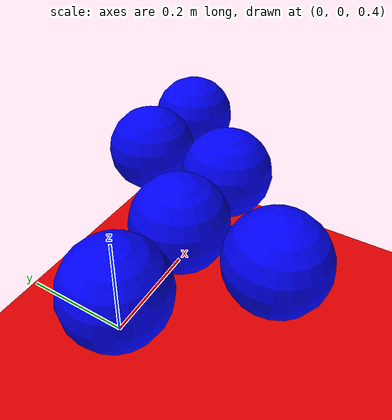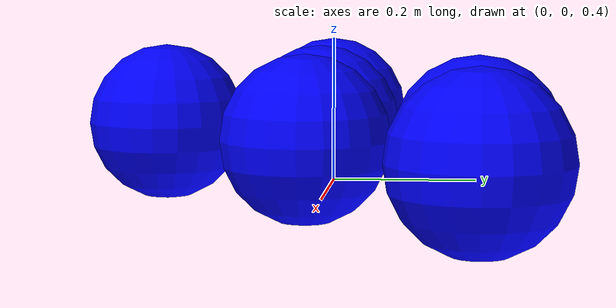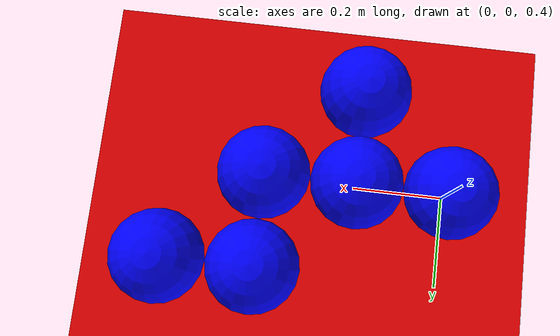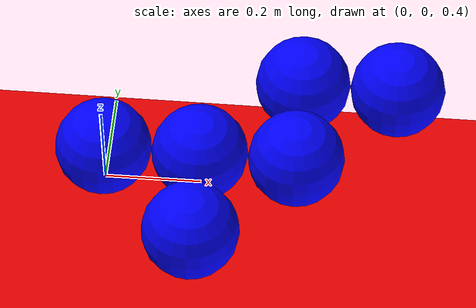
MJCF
<?xml version="1.0" ?>
<mujoco>
	<option gravity="0 0 -9.81"/>
	<worldbody>
		<light diffuse=".5 .5 .5" pos="0 0 3" dir="0 0 -1"/>
		<geom type="plane" size="10 10 0.1" rgba=".9 0 0 1"/>
		<body pos="0 0 0.5">
			<geom size="0.1" rgba="0 0 1 1"/>
			<joint type="free"/>
			<site name="site1" size="0.1" rgba="1 0 0 1"/>
			<body pos="0.1 0 0">
				<joint name="onejoint" type="ball" limited="true" range="0 60"/>
				<geom size="0.1" pos="0.1 0 0" rgba="0 0 1 1"/>
				<site name="site2" pos="0.1 0 0" size="0.1" rgba="1 0 0 1"/>
				<body pos="0.2 0 0">
					<joint name="threejoint" type="ball" limited="true" range="0 60"/>
					<geom size="0.1" rgba="0 0 1 1" pos="0.1 0 0"/>
					<site name="site3" pos="0.1 0 0" size="0.1" rgba="1 0 0 1"/>
					<body pos="0.1 0.1 0">
						<joint name="fourjoint" type="ball" limited="true" range="0 60"/>
						<geom size="0.1" rgba="0 0 1 1" pos="0 0.1 0"/>
						<site name="site4" pos="0 0.1 0" size="0.1" rgba="1 0 0 1"/>
						<body pos="0.1 0.1 0">
							<joint name="fivejoint" type="ball" limited="true" range="0 60"/>
							<geom size="0.1" rgba="0 0 1 1" pos="0.1 0 0"/>
							<site name="site5" size="0.1" pos="0.1 0 0" rgba="1 0 0 1"/>
						</body>
					</body>
				</body>
				<body pos="0.1 -0.1 0">
					<joint name="6oint" type="ball" limited="true" range="0 60"/>
					<geom size="0.1" rgba="0 0 1 1" pos="0 -0.1 0"/>
					<site name="site6" pos="0 -0.1 0" size="0.1" rgba="1 0 0 1"/>
				</body>
			</body>
		</body>
	</worldbody>
	<actuator>
		<motor name="motor1" joint="onejoint" gear="1"/>
		<motor name="motor3" joint="threejoint" gear="1"/>
		<motor name="motor4" joint="fourjoint" gear="1"/>
		<motor name="motor5" joint="fivejoint" gear="1"/>
	</actuator>
	<sensor>
		<touch name="test1" site="site1"/>
		<touch name="test2" site="site2"/>
		<touch name="test3" site="site3"/>
		<touch name="test4" site="site4"/>
		<touch name="test5" site="site5"/>
	</sensor>
</mujoco>
